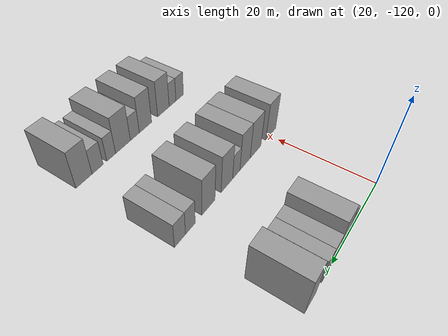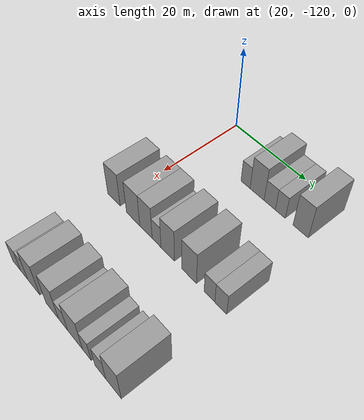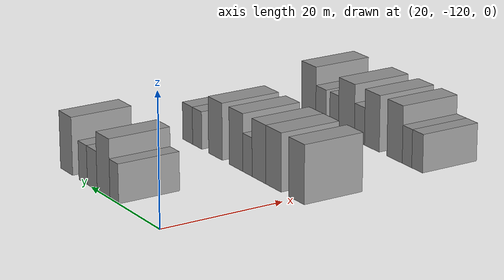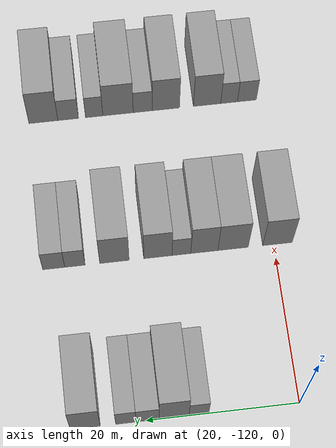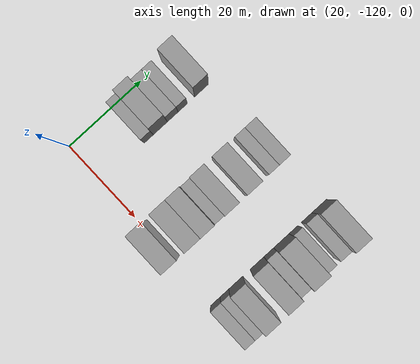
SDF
<sdf version="1.6">
 <world name="default">
  <model name="building_24">
   <static>1</static>
   <pose>25.0000 -106.8678 0 0.000000 0.000000 0.000000</pose>
   <link name="link">
    <pose>0 0 3.00 0 0 0</pose>
    <collision name="collision"><geometry><box><size>10.0000 2.5782 6.0000</size></box></geometry></collision>
    <visual name="visual">
     <cast_shadows>0</cast_shadows>
     <geometry><box><size>10.0000 2.5782 6.0000</size></box></geometry>
     <material>
      <script>
       <uri>model://grey_wall/materials/scripts</uri>
       <uri>model://grey_wall/materials/textures</uri>
       <name>vrc/grey_wall</name>
      </script>
     </material>
    </visual>
   </link>
  </model>
  <model name="building_25">
   <static>1</static>
   <pose>25.0000 -103.6385 0 0.000000 0.000000 0.000000</pose>
   <link name="link">
    <pose>0 0 4.50 0 0 0</pose>
    <collision name="collision"><geometry><box><size>10.0000 3.8804 9.0000</size></box></geometry></collision>
    <visual name="visual">
     <cast_shadows>0</cast_shadows>
     <geometry><box><size>10.0000 3.8804 9.0000</size></box></geometry>
     <material>
      <script>
       <uri>model://grey_wall/materials/scripts</uri>
       <uri>model://grey_wall/materials/textures</uri>
       <name>vrc/grey_wall</name>
      </script>
     </material>
    </visual>
   </link>
  </model>
  <model name="building_26">
   <static>1</static>
   <pose>25.0000 -100.2035 0 0.000000 0.000000 0.000000</pose>
   <link name="link">
    <pose>0 0 3.00 0 0 0</pose>
    <collision name="collision"><geometry><box><size>10.0000 2.9895 6.0000</size></box></geometry></collision>
    <visual name="visual">
     <cast_shadows>0</cast_shadows>
     <geometry><box><size>10.0000 2.9895 6.0000</size></box></geometry>
     <material>
      <script>
       <uri>model://grey_wall/materials/scripts</uri>
       <uri>model://grey_wall/materials/textures</uri>
       <name>vrc/grey_wall</name>
      </script>
     </material>
    </visual>
   </link>
  </model>
  <model name="building_27">
   <static>1</static>
   <pose>25.0000 -97.4004 0 0.000000 0.000000 0.000000</pose>
   <link name="link">
    <pose>0 0 3.00 0 0 0</pose>
    <collision name="collision"><geometry><box><size>10.0000 2.6168 6.0000</size></box></geometry></collision>
    <visual name="visual">
     <cast_shadows>0</cast_shadows>
     <geometry><box><size>10.0000 2.6168 6.0000</size></box></geometry>
     <material>
      <script>
       <uri>model://grey_wall/materials/scripts</uri>
       <uri>model://grey_wall/materials/textures</uri>
       <name>vrc/grey_wall</name>
      </script>
     </material>
    </visual>
   </link>
  </model>
  <model name="building_28">
   <static>1</static>
   <pose>25.0000 -92.1658 0 0.000000 0.000000 0.000000</pose>
   <link name="link">
    <pose>0 0 4.50 0 0 0</pose>
    <collision name="collision"><geometry><box><size>10.0000 3.8523 9.0000</size></box></geometry></collision>
    <visual name="visual">
     <cast_shadows>0</cast_shadows>
     <geometry><box><size>10.0000 3.8523 9.0000</size></box></geometry>
     <material>
      <script>
       <uri>model://grey_wall/materials/scripts</uri>
       <uri>model://grey_wall/materials/textures</uri>
       <name>vrc/grey_wall</name>
      </script>
     </material>
    </visual>
   </link>
  </model>
  <model name="building_142">
   <static>1</static>
   <pose>47.0000 -120.5244 0 0.000000 0.000000 0.000000</pose>
   <link name="link">
    <pose>0 0 4.50 0 0 0</pose>
    <collision name="collision"><geometry><box><size>10.0000 4.0685 9.0000</size></box></geometry></collision>
    <visual name="visual">
     <cast_shadows>0</cast_shadows>
     <geometry><box><size>10.0000 4.0685 9.0000</size></box></geometry>
     <material>
      <script>
       <uri>model://grey_wall/materials/scripts</uri>
       <uri>model://grey_wall/materials/textures</uri>
       <name>vrc/grey_wall</name>
      </script>
     </material>
    </visual>
   </link>
  </model>
  <model name="building_143">
   <static>1</static>
   <pose>47.0000 -114.4182 0 0.000000 0.000000 0.000000</pose>
   <link name="link">
    <pose>0 0 4.50 0 0 0</pose>
    <collision name="collision"><geometry><box><size>10.0000 4.1437 9.0000</size></box></geometry></collision>
    <visual name="visual">
     <cast_shadows>0</cast_shadows>
     <geometry><box><size>10.0000 4.1437 9.0000</size></box></geometry>
     <material>
      <script>
       <uri>model://grey_wall/materials/scripts</uri>
       <uri>model://grey_wall/materials/textures</uri>
       <name>vrc/grey_wall</name>
      </script>
     </material>
    </visual>
   </link>
  </model>
  <model name="building_144">
   <static>1</static>
   <pose>47.0000 -110.4852 0 0.000000 0.000000 0.000000</pose>
   <link name="link">
    <pose>0 0 4.50 0 0 0</pose>
    <collision name="collision"><geometry><box><size>10.0000 3.7225 9.0000</size></box></geometry></collision>
    <visual name="visual">
     <cast_shadows>0</cast_shadows>
     <geometry><box><size>10.0000 3.7225 9.0000</size></box></geometry>
     <material>
      <script>
       <uri>model://grey_wall/materials/scripts</uri>
       <uri>model://grey_wall/materials/textures</uri>
       <name>vrc/grey_wall</name>
      </script>
     </material>
    </visual>
   </link>
  </model>
  <model name="building_145">
   <static>1</static>
   <pose>47.0000 -107.3381 0 0.000000 0.000000 0.000000</pose>
   <link name="link">
    <pose>0 0 3.00 0 0 0</pose>
    <collision name="collision"><geometry><box><size>10.0000 2.5717 6.0000</size></box></geometry></collision>
    <visual name="visual">
     <cast_shadows>0</cast_shadows>
     <geometry><box><size>10.0000 2.5717 6.0000</size></box></geometry>
     <material>
      <script>
       <uri>model://grey_wall/materials/scripts</uri>
       <uri>model://grey_wall/materials/textures</uri>
       <name>vrc/grey_wall</name>
      </script>
     </material>
    </visual>
   </link>
  </model>
  <model name="building_146">
   <static>1</static>
   <pose>47.0000 -104.1316 0 0.000000 0.000000 0.000000</pose>
   <link name="link">
    <pose>0 0 4.50 0 0 0</pose>
    <collision name="collision"><geometry><box><size>10.0000 3.8413 9.0000</size></box></geometry></collision>
    <visual name="visual">
     <cast_shadows>0</cast_shadows>
     <geometry><box><size>10.0000 3.8413 9.0000</size></box></geometry>
     <material>
      <script>
       <uri>model://grey_wall/materials/scripts</uri>
       <uri>model://grey_wall/materials/textures</uri>
       <name>vrc/grey_wall</name>
      </script>
     </material>
    </visual>
   </link>
  </model>
  <model name="building_147">
   <static>1</static>
   <pose>47.0000 -98.2140 0 0.000000 0.000000 0.000000</pose>
   <link name="link">
    <pose>0 0 4.50 0 0 0</pose>
    <collision name="collision"><geometry><box><size>10.0000 3.9939 9.0000</size></box></geometry></collision>
    <visual name="visual">
     <cast_shadows>0</cast_shadows>
     <geometry><box><size>10.0000 3.9939 9.0000</size></box></geometry>
     <material>
      <script>
       <uri>model://grey_wall/materials/scripts</uri>
       <uri>model://grey_wall/materials/textures</uri>
       <name>vrc/grey_wall</name>
      </script>
     </material>
    </visual>
   </link>
  </model>
  <model name="building_148">
   <static>1</static>
   <pose>47.0000 -92.8414 0 0.000000 0.000000 0.000000</pose>
   <link name="link">
    <pose>0 0 3.00 0 0 0</pose>
    <collision name="collision"><geometry><box><size>10.0000 2.7513 6.0000</size></box></geometry></collision>
    <visual name="visual">
     <cast_shadows>0</cast_shadows>
     <geometry><box><size>10.0000 2.7513 6.0000</size></box></geometry>
     <material>
      <script>
       <uri>model://grey_wall/materials/scripts</uri>
       <uri>model://grey_wall/materials/textures</uri>
       <name>vrc/grey_wall</name>
      </script>
     </material>
    </visual>
   </link>
  </model>
  <model name="building_149">
   <static>1</static>
   <pose>47.0000 -89.9779 0 0.000000 0.000000 0.000000</pose>
   <link name="link">
    <pose>0 0 3.00 0 0 0</pose>
    <collision name="collision"><geometry><box><size>10.0000 2.9758 6.0000</size></box></geometry></collision>
    <visual name="visual">
     <cast_shadows>0</cast_shadows>
     <geometry><box><size>10.0000 2.9758 6.0000</size></box></geometry>
     <material>
      <script>
       <uri>model://grey_wall/materials/scripts</uri>
       <uri>model://grey_wall/materials/textures</uri>
       <name>vrc/grey_wall</name>
      </script>
     </material>
    </visual>
   </link>
  </model>
  <model name="building_267">
   <static>1</static>
   <pose>69.0000 -119.5031 0 0.000000 0.000000 0.000000</pose>
   <link name="link">
    <pose>0 0 3.00 0 0 0</pose>
    <collision name="collision"><geometry><box><size>10.0000 2.7203 6.0000</size></box></geometry></collision>
    <visual name="visual">
     <cast_shadows>0</cast_shadows>
     <geometry><box><size>10.0000 2.7203 6.0000</size></box></geometry>
     <material>
      <script>
       <uri>model://grey_wall/materials/scripts</uri>
       <uri>model://grey_wall/materials/textures</uri>
       <name>vrc/grey_wall</name>
      </script>
     </material>
    </visual>
   </link>
  </model>
  <model name="building_268">
   <static>1</static>
   <pose>69.0000 -116.9396 0 0.000000 0.000000 0.000000</pose>
   <link name="link">
    <pose>0 0 3.00 0 0 0</pose>
    <collision name="collision"><geometry><box><size>10.0000 2.4068 6.0000</size></box></geometry></collision>
    <visual name="visual">
     <cast_shadows>0</cast_shadows>
     <geometry><box><size>10.0000 2.4068 6.0000</size></box></geometry>
     <material>
      <script>
       <uri>model://grey_wall/materials/scripts</uri>
       <uri>model://grey_wall/materials/textures</uri>
       <name>vrc/grey_wall</name>
      </script>
     </material>
    </visual>
   </link>
  </model>
  <model name="building_269">
   <static>1</static>
   <pose>69.0000 -113.7687 0 0.000000 0.000000 0.000000</pose>
   <link name="link">
    <pose>0 0 4.50 0 0 0</pose>
    <collision name="collision"><geometry><box><size>10.0000 3.9351 9.0000</size></box></geometry></collision>
    <visual name="visual">
     <cast_shadows>0</cast_shadows>
     <geometry><box><size>10.0000 3.9351 9.0000</size></box></geometry>
     <material>
      <script>
       <uri>model://grey_wall/materials/scripts</uri>
       <uri>model://grey_wall/materials/textures</uri>
       <name>vrc/grey_wall</name>
      </script>
     </material>
    </visual>
   </link>
  </model>
  <model name="building_270">
   <static>1</static>
   <pose>69.0000 -107.8435 0 0.000000 0.000000 0.000000</pose>
   <link name="link">
    <pose>0 0 4.50 0 0 0</pose>
    <collision name="collision"><geometry><box><size>10.0000 3.9152 9.0000</size></box></geometry></collision>
    <visual name="visual">
     <cast_shadows>0</cast_shadows>
     <geometry><box><size>10.0000 3.9152 9.0000</size></box></geometry>
     <material>
      <script>
       <uri>model://grey_wall/materials/scripts</uri>
       <uri>model://grey_wall/materials/textures</uri>
       <name>vrc/grey_wall</name>
      </script>
     </material>
    </visual>
   </link>
  </model>
  <model name="building_271">
   <static>1</static>
   <pose>69.0000 -104.5299 0 0.000000 0.000000 0.000000</pose>
   <link name="link">
    <pose>0 0 3.00 0 0 0</pose>
    <collision name="collision"><geometry><box><size>10.0000 2.7121 6.0000</size></box></geometry></collision>
    <visual name="visual">
     <cast_shadows>0</cast_shadows>
     <geometry><box><size>10.0000 2.7121 6.0000</size></box></geometry>
     <material>
      <script>
       <uri>model://grey_wall/materials/scripts</uri>
       <uri>model://grey_wall/materials/textures</uri>
       <name>vrc/grey_wall</name>
      </script>
     </material>
    </visual>
   </link>
  </model>
  <model name="building_272">
   <static>1</static>
   <pose>69.0000 -101.0026 0 0.000000 0.000000 0.000000</pose>
   <link name="link">
    <pose>0 0 4.50 0 0 0</pose>
    <collision name="collision"><geometry><box><size>10.0000 4.3423 9.0000</size></box></geometry></collision>
    <visual name="visual">
     <cast_shadows>0</cast_shadows>
     <geometry><box><size>10.0000 4.3423 9.0000</size></box></geometry>
     <material>
      <script>
       <uri>model://grey_wall/materials/scripts</uri>
       <uri>model://grey_wall/materials/textures</uri>
       <name>vrc/grey_wall</name>
      </script>
     </material>
    </visual>
   </link>
  </model>
  <model name="building_273">
   <static>1</static>
   <pose>69.0000 -97.6032 0 0.000000 0.000000 0.000000</pose>
   <link name="link">
    <pose>0 0 3.00 0 0 0</pose>
    <collision name="collision"><geometry><box><size>10.0000 2.4566 6.0000</size></box></geometry></collision>
    <visual name="visual">
     <cast_shadows>0</cast_shadows>
     <geometry><box><size>10.0000 2.4566 6.0000</size></box></geometry>
     <material>
      <script>
       <uri>model://grey_wall/materials/scripts</uri>
       <uri>model://grey_wall/materials/textures</uri>
       <name>vrc/grey_wall</name>
      </script>
     </material>
    </visual>
   </link>
  </model>
  <model name="building_274">
   <static>1</static>
   <pose>69.0000 -93.9067 0 0.000000 0.000000 0.000000</pose>
   <link name="link">
    <pose>0 0 3.00 0 0 0</pose>
    <collision name="collision"><geometry><box><size>10.0000 2.9365 6.0000</size></box></geometry></collision>
    <visual name="visual">
     <cast_shadows>0</cast_shadows>
     <geometry><box><size>10.0000 2.9365 6.0000</size></box></geometry>
     <material>
      <script>
       <uri>model://grey_wall/materials/scripts</uri>
       <uri>model://grey_wall/materials/textures</uri>
       <name>vrc/grey_wall</name>
      </script>
     </material>
    </visual>
   </link>
  </model>
  <model name="building_275">
   <static>1</static>
   <pose>69.0000 -90.3841 0 0.000000 0.000000 0.000000</pose>
   <link name="link">
    <pose>0 0 4.50 0 0 0</pose>
    <collision name="collision"><geometry><box><size>10.0000 4.1088 9.0000</size></box></geometry></collision>
    <visual name="visual">
     <cast_shadows>0</cast_shadows>
     <geometry><box><size>10.0000 4.1088 9.0000</size></box></geometry>
     <material>
      <script>
       <uri>model://grey_wall/materials/scripts</uri>
       <uri>model://grey_wall/materials/textures</uri>
       <name>vrc/grey_wall</name>
      </script>
     </material>
    </visual>
   </link>
  </model>
 </world>
</sdf>
